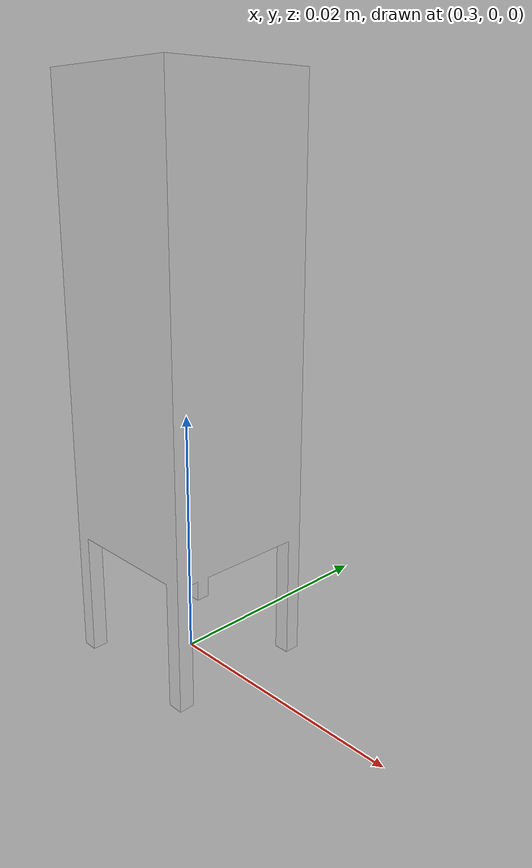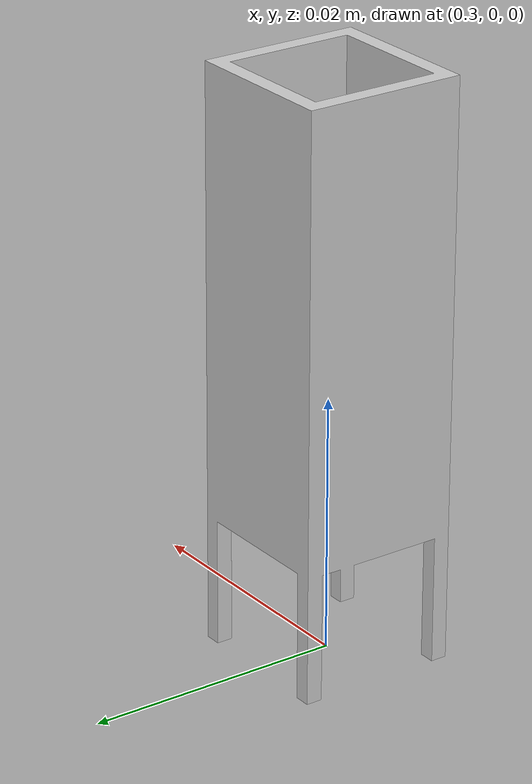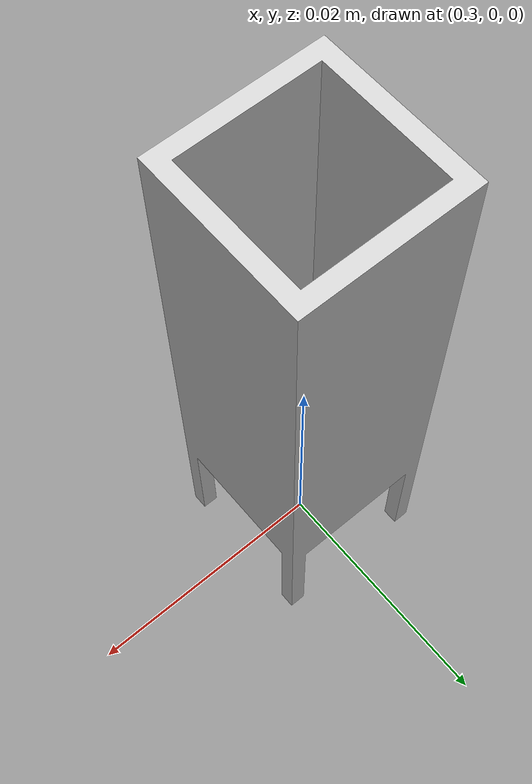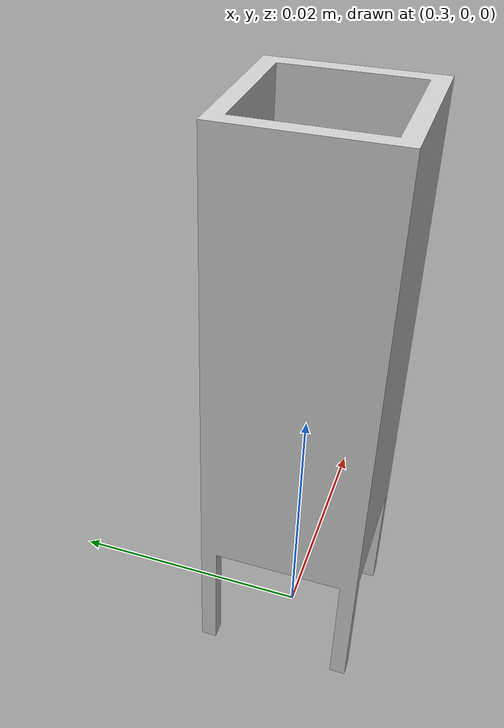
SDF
<?xml version="1.0"?>
<sdf version="1.6">
  <model name="cuvette">
    <pose>0.3 0 0 0 0 0</pose>
    <static>false</static>

    <link name="cuvette_link">

      <visual name="cuvette_visual">
        <geometry>
          <mesh>
            <uri>model://cuvette/meshes/cuvette.stl</uri>
            <scale>0.001 0.001 0.001</scale>
          </mesh>
        </geometry>
        <material>
          <ambient>0.8 0.8 0.8 1</ambient>
          <diffuse>0.8 0.8 0.8 1</diffuse>
          <specular>0.5 0.5 0.5 1</specular>
        </material>
      </visual>

      <collision name="cuvette_collision">
        <geometry>
          <mesh>
            <uri>model://cuvette/meshes/cuvette.stl</uri>
            <scale>0.001 0.001 0.001</scale>
          </mesh>
        </geometry>
        <surface>
          <friction>
            <ode>
              <mu>0.5</mu>
              <mu2>0.5</mu2>
            </ode>
          </friction>
          <bounce>
            <restitution_coefficient>0.05</restitution_coefficient>
            <threshold>100000</threshold>
          </bounce>
          <contact>
            <ode>
              <kp>100000</kp>
              <kd>1.0</kd>
              <contact_surface_layer>0.0015</contact_surface_layer>
            </ode>
          </contact>
        </surface>
      </collision>

      <inertial>
        <mass>0.015</mass>
        <inertia>
          <ixx>2.73e-06</ixx>
          <iyy>2.73e-06</iyy>
          <izz>3.91e-07</izz>
          <ixy>0</ixy>
          <ixz>0</ixz>
          <iyz>0</iyz>
        </inertia>
      </inertial>

    </link>
  </model>
</sdf>
